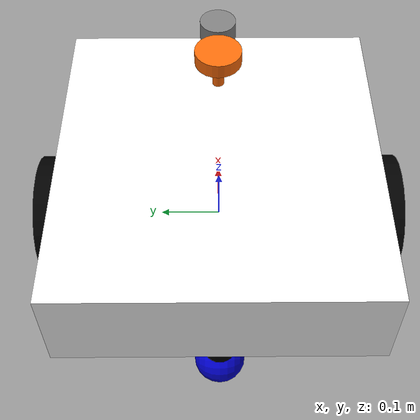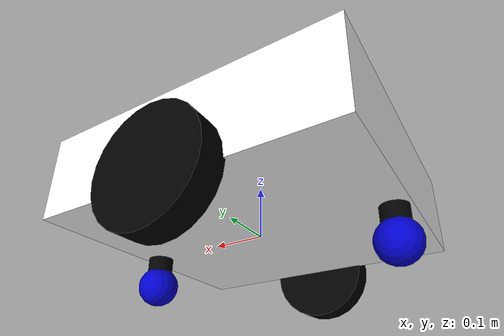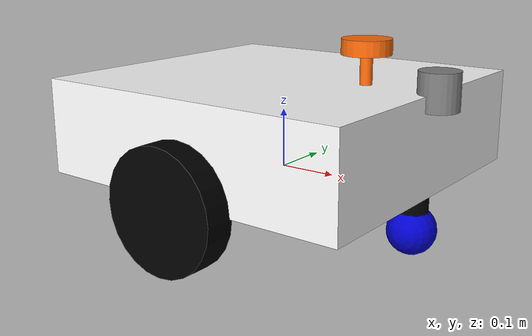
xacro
<?xml version="1.0"?>
<robot name="xjrobot" xmlns:xacro="http://ros.org/wiki/xacro">
  <!-- 主组装文件：按 lino 模版拆分为 mech/sensors/controllers -->
  <xacro:include filename="$(find xjrobot_description)/urdf/common_properties.xacro"/>
  <xacro:include filename="$(find xjrobot_description)/urdf/mid360/model.gazebo.xacro"/>
  <xacro:include filename="$(find xjrobot_description)/urdf/mech/chassis.urdf.xacro"/>
  <xacro:include filename="$(find xjrobot_description)/urdf/sensors/lidar_2d.urdf.xacro"/>
  <xacro:include filename="$(find xjrobot_description)/urdf/sensors/lidar_3d.urdf.xacro"/>
  <xacro:include filename="$(find xjrobot_description)/urdf/sensors/imu.urdf.xacro"/>

  <xacro:xjrobot_chassis/>
  <!-- 区分 2D / 3D 雷达结构，分别独立宏 -->
  <xacro:xjrobot_lidar_2d/>
  <xacro:xjrobot_lidar_3d/>
  <xacro:xjrobot_imu/>
</robot>

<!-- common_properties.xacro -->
<robot name="xacro_properties" xmlns:xacro="http://ros.org/wiki/xacro">

  <!-- Init colour -->
  <material name="black">
      <color rgba="0.0 0.0 0.0 1.0"/>
  </material>

  <material name="dark">
    <color rgba="0.3 0.3 0.3 1.0"/>
  </material>
  <material name="light_black">
    <color rgba="0.4 0.4 0.4 1.0"/>
  </material>

  <material name="blue">
    <color rgba="0.0 0.0 0.8 1.0"/>
  </material>

  <material name="green">
    <color rgba="0.0 0.8 0.0 1.0"/>
  </material>

  <material name="grey">
    <color rgba="0.5 0.5 0.5 1.0"/>
  </material>

  <material name="orange">
    <color rgba="${255/255} ${108/255} ${10/255} 1.0"/>
  </material>

  <material name="brown">
    <color rgba="${222/255} ${207/255} ${195/255} 1.0"/>
  </material>

  <material name="red">
    <color rgba="0.8 0.0 0.0 1.0"/>
  </material>

  <material name="white">
    <color rgba="1.0 1.0 1.0 1.0"/>
  </material>

  <material name="ywhite">
    <color rgba="1.0 1.0 1.0 1.0"/>
  </material>
</robot>

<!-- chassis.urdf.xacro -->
<robot xmlns:xacro="http://ros.org/wiki/xacro">
  <!-- 底盘主体与轮系（不包含传感器），按 lino 的“机械结构独立拆分”方式组织 -->
  <xacro:macro name="xjrobot_chassis">
    <link name="base_footprint"/>

    <link name="base_link">
      <inertial>
        <origin xyz="0 0 0" rpy="0 0 0" />
        <mass value="20" />
        <inertia ixx="0.64" ixy="0.0" ixz="0.0" iyy="1.39" iyz="0.0" izz="1.95" />
      </inertial>
      <visual>
        <origin xyz="0 0 0.08" rpy="0 0 0" />
        <geometry>
          <box size="0.56 0.52 0.16" />
        </geometry>
        <material name="white" />
      </visual>
      <collision>
        <origin xyz="0 0 0.08" rpy="0 0 0" />
        <geometry>
          <box size="0.56 0.52 0.16" />
        </geometry>
      </collision>
    </link>

    <joint name="base_footprint_joint" type="fixed">
      <!-- 固定 TF: base_footprint -> base_link
           当前与仿真保持一致，设置为 xyz=(0, 0, 0), rpy=(0, 0, 0)。
           如果后续想调整底盘主坐标系相对地面投影的位置或姿态，请修改这里。 -->
      <origin xyz="0 0 0" rpy="0 0 0" />
      <parent link="base_footprint" />
      <child link="base_link" />
    </joint>

    <link name="fore_universal_wheel_link">
      <inertial>
        <origin xyz="0 0 0" rpy="0 0 0" />
        <mass value="0.5" />
        <inertia ixx="9.4792E-5" ixy="0" ixz="0" iyy="1.5625E-4" iyz="0" izz="9.4792E-5" />
      </inertial>
      <visual>
        <origin xyz="0 0 0" rpy="0 0 0" />
        <geometry>
          <cylinder length="0.12" radius="0.025" />
        </geometry>
        <material name="black" />
      </visual>
      <collision>
        <origin xyz="0 0 0" rpy="0 0 0" />
        <geometry>
          <cylinder length="0.12" radius="0.025" />
        </geometry>
      </collision>
    </link>
    <joint name="joint_fuw" type="continuous">
      <origin xyz="0.25 0 0" rpy="0 0 0" />
      <parent link="base_link" />
      <child link="fore_universal_wheel_link" />
      <axis xyz="0 0 1" />
      <safety_controller k_velocity="0" />
    </joint>

    <link name="small_fore_wheel_link">
      <inertial>
        <origin xyz="0 0 0" rpy="0 0 0" />
        <mass value="0.5" />
        <inertia ixx="9.4792E-5" ixy="0" ixz="0" iyy="1.5625E-4" iyz="0" izz="9.4792E-5" />
      </inertial>
      <visual>
        <origin xyz="0 0 0" rpy="1.57 0 0" />
        <geometry>
          <sphere radius="0.04" />
        </geometry>
        <material name="blue" />
      </visual>
      <collision>
        <origin xyz="0 0 0" rpy="1.57 0 0" />
        <geometry>
          <sphere radius="0.04" />
        </geometry>
      </collision>
    </link>
    <joint name="joint_ffw" type="continuous">
      <origin xyz="0 0 -0.06" rpy="0 0 0" />
      <parent link="fore_universal_wheel_link" />
      <child link="small_fore_wheel_link" />
      <axis xyz="0 1 0" />
      <safety_controller k_velocity="0" />
    </joint>

    <link name="back_universal_wheel_link">
      <inertial>
        <origin xyz="0 0 0" rpy="0 0 0" />
        <mass value="0.5" />
        <inertia ixx="9.4792E-5" ixy="0" ixz="0" iyy="1.5625E-4" iyz="0" izz="9.4792E-5" />
      </inertial>
      <visual>
        <origin xyz="0 0 0" rpy="0 0 0" />
        <geometry>
          <cylinder length="0.12" radius="0.025" />
        </geometry>
        <material name="black" />
      </visual>
      <collision>
        <origin xyz="0 0 0" rpy="0 0 0" />
        <geometry>
          <cylinder length="0.12" radius="0.025" />
        </geometry>
      </collision>
    </link>
    <joint name="joint_buw" type="continuous">
      <origin xyz="-0.25 0 0" rpy="0 0 0" />
      <parent link="base_link" />
      <child link="back_universal_wheel_link" />
      <axis xyz="0 0 1" />
      <safety_controller k_velocity="0" />
    </joint>

    <link name="small_back_wheel_link">
      <inertial>
        <origin xyz="0 0 0" rpy="0 0 0" />
        <mass value="0.5" />
        <inertia ixx="9.4792E-5" ixy="0" ixz="0" iyy="1.5625E-4" iyz="0" izz="9.4792E-5" />
      </inertial>
      <visual>
        <origin xyz="0 0 0" rpy="1.57 0 0" />
        <geometry>
          <sphere radius="0.04" />
        </geometry>
        <material name="blue" />
      </visual>
      <collision>
        <origin xyz="0 0 0" rpy="1.57 0 0" />
        <geometry>
          <sphere radius="0.04" />
        </geometry>
      </collision>
    </link>
    <joint name="joint_bfw" type="continuous">
      <origin xyz="0 0 -0.06" rpy="0 0 0" />
      <parent link="back_universal_wheel_link" />
      <child link="small_back_wheel_link" />
      <axis xyz="0 1 0" />
      <safety_controller k_velocity="0" />
    </joint>

    <link name="left_wheel_link">
      <inertial>
        <origin xyz="0 0 0" rpy="0 0 0" />
        <mass value="2" />
        <inertia ixx="0.002867" ixy="0" ixz="0" iyy="0.0049" iyz="0" izz="0.002867" />
      </inertial>
      <visual>
        <origin xyz="0 0 0" rpy="1.57 0 0" />
        <geometry>
          <cylinder length="0.05" radius="0.1" />
        </geometry>
        <material name="black" />
      </visual>
      <collision>
        <origin xyz="0 0 0" rpy="1.57 0 0" />
        <geometry>
          <cylinder length="0.05" radius="0.1" />
        </geometry>
      </collision>
    </link>
    <joint name="joint_lw" type="continuous">
      <origin xyz="0 0.28 0" rpy="0 0 0" />
      <parent link="base_link" />
      <child link="left_wheel_link" />
      <axis xyz="0 1 0" />
      <safety_controller k_velocity="0" />
    </joint>

    <link name="right_wheel_link">
      <inertial>
        <origin xyz="0 0 0" rpy="0 0 0" />
        <mass value="2" />
        <inertia ixx="0.002867" ixy="0" ixz="0" iyy="0.0049" iyz="0" izz="0.002867" />
      </inertial>
      <visual>
        <origin xyz="0 0 0" rpy="1.57 0 0" />
        <geometry>
          <cylinder length="0.05" radius="0.1" />
        </geometry>
        <material name="black" />
      </visual>
      <collision>
        <origin xyz="0 0 0" rpy="1.57 0 0" />
        <geometry>
          <cylinder length="0.05" radius="0.1" />
        </geometry>
      </collision>
    </link>
    <joint name="joint_rw" type="continuous">
      <origin xyz="0 -0.28 0" rpy="0 0 0" />
      <parent link="base_link" />
      <child link="right_wheel_link" />
      <axis xyz="0 1 0" />
      <safety_controller k_velocity="0" />
    </joint>
  </xacro:macro>
</robot>

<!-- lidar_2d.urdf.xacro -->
<robot xmlns:xacro="http://ros.org/wiki/xacro">
  <!-- 2D 雷达本体（仅几何与关节） -->
  <xacro:macro name="xjrobot_lidar_2d">
    <link name="lidar_2d_link">
      <visual>
        <origin xyz="0 0 0" rpy="0 0 0" />
        <geometry>
          <cylinder length="0.025" radius="0.04" />
        </geometry>
        <material name="orange" />
      </visual>
      <visual>
        <origin xyz="0 0 -0.03" rpy="0 0 0" />
        <geometry>
          <cylinder length="0.08" radius="0.01" />
        </geometry>
        <material name="orange" />
      </visual>
    </link>

    <joint name="joint_lidar_2d" type="fixed">
      <!-- 固定 TF: base_link -> lidar_2d_link
           当前与仿真保持一致，设置为 xyz=(0.16, 0, 0.22), rpy=(0, 0, 0)。
           如果后续更换 2D 雷达安装位，请直接修改这里。 -->
      <origin xyz="0.16 0 0.22" rpy="0 0 0" />
      <parent link="base_link" />
      <child link="lidar_2d_link" />
      <axis xyz="0 0 0" />
      <safety_controller k_velocity="0" />
    </joint>
  </xacro:macro>
</robot>

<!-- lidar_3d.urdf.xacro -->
<robot xmlns:xacro="http://ros.org/wiki/xacro">
  <!-- 3D 雷达本体（仅几何与关节） -->
  <xacro:macro name="xjrobot_lidar_3d">
    <link name="lidar_3d_link">
      <visual>
        <origin xyz="0 0 0" rpy="0 0 0" />
        <geometry>
          <cylinder length="0.06" radius="0.0325" />
        </geometry>
        <material name="grey" />
      </visual>
    </link>

    <joint name="joint_lidar_3d" type="fixed">
      <!-- 固定 TF: base_link -> lidar_3d_link
           当前与仿真保持一致，设置为 xyz=(0.285, 0, 0.165), rpy=(0, 0, 0)。
           如果后续调整 3D 雷达安装位姿，请修改这里。 -->
      <origin xyz="0.285 0 0.165" rpy="0 0 0" />
      <parent link="base_link" />
      <child link="lidar_3d_link" />
      <axis xyz="0 0 0" />
      <safety_controller k_velocity="0" />
    </joint>
  </xacro:macro>
</robot>

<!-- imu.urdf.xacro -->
<robot xmlns:xacro="http://ros.org/wiki/xacro">
  <!-- IMU 本体（仅 link/joint），对齐 lino：直接挂在 base_link -->
  <xacro:macro name="xjrobot_imu">
    <link name="imu_link"/>

    <joint name="joint_imu" type="fixed">
      <!-- 固定 TF: base_link -> imu_link
           当前与仿真保持一致，设置为 xyz=(0.285, 0, 0.165), rpy=(0, 0, 0)。
           这里保持与原模型等效安装位置（原来是相对 lidar_3d_link 的 0 位姿）。
           如果后续 IMU 从雷达处移走，请直接修改这里。 -->
      <origin xyz="0.285 0 0.165" rpy="0 0 0" />
      <parent link="base_link" />
      <child link="imu_link" />
    </joint>
  </xacro:macro>
</robot>
